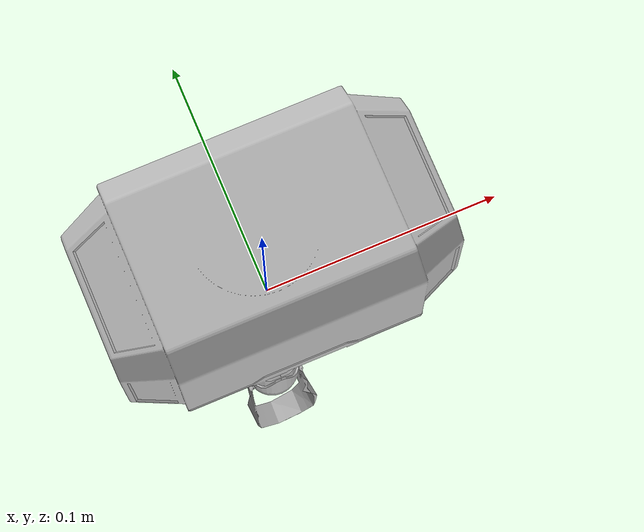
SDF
<?xml version='1.0'?>
<sdf version="1.6">
  <model name="thorHammer">
    <pose>0 0 0 0 0 0</pose>
    <static>true</static>
    <link name="link">
      <inertial>
        <mass>0.2</mass>
        <inertia> <!-- inertias are tricky to compute -->
          <!-- http://gazebosim.org/tutorials?tut=inertia&cat=build_robot -->
          <ixx>0.00083</ixx> 	<ixy>0.0</ixy> 		<ixz>0.0</ixz>
           			<iyy>0.00083</iyy>	<iyz>0.0</iyz>
          						<izz>0.00083</izz>
        </inertia>
      </inertial>
      <collision name="collision">
      	<geometry>
		<mesh>
        		<uri>model://thorHammer/meshes/thorHammer.dae</uri>
        	</mesh>
        </geometry>
		<surface>
			<friction>
				<ode>
					<mu>100000000000.0</mu>
					<mu2>100000000000.0</mu2>
					<fdir1>1.000000 1.000000 1.000000</fdir1>
		       			<slip1>0.000000</slip1>
		       			<slip2>0.000000</slip2>
				</ode>
			</friction>
			<contact>
		      		<ode>
		        		<soft_cfm>0.000000</soft_cfm>
		        		<soft_erp>0.500000</soft_erp>
		        		<kp>100000.000000</kp>
		        		<kd>10.000000</kd>
		        		<max_vel>100.000000</max_vel>
		        		<min_depth>0.0005000</min_depth>
		      		</ode>
			</contact>
	       	</surface>
	</collision>
      <visual name="visual">
        <geometry>
		<mesh>
        		<uri>model://thorHammer/meshes/thorHammer.dae</uri>
        	</mesh>
        </geometry>
      </visual>
    </link>
  </model>
</sdf>
